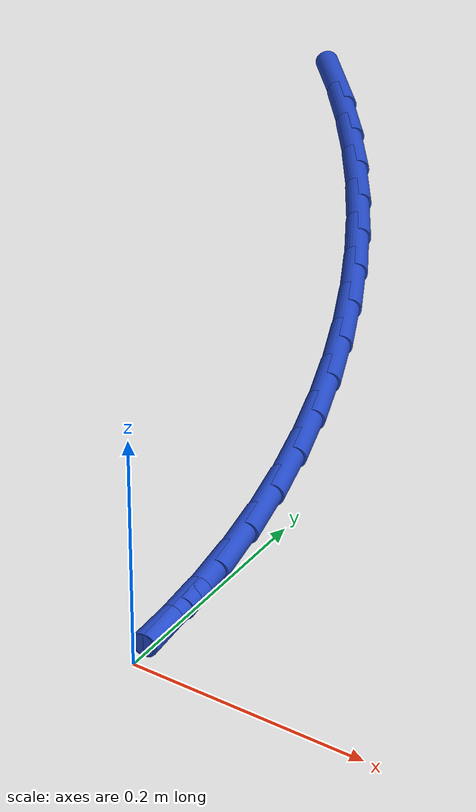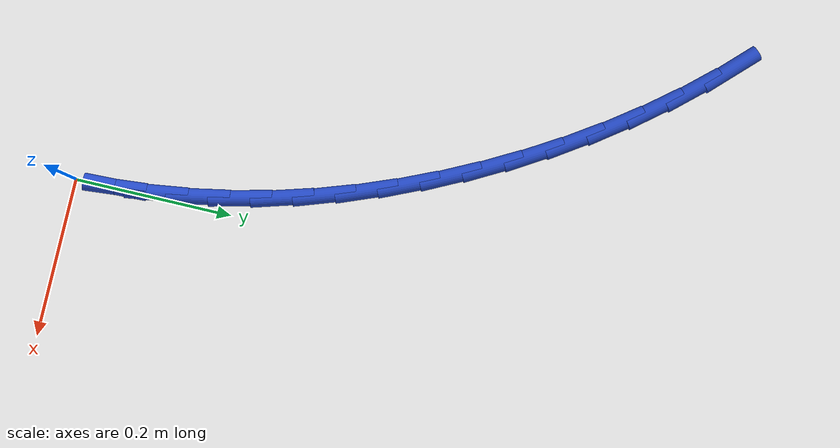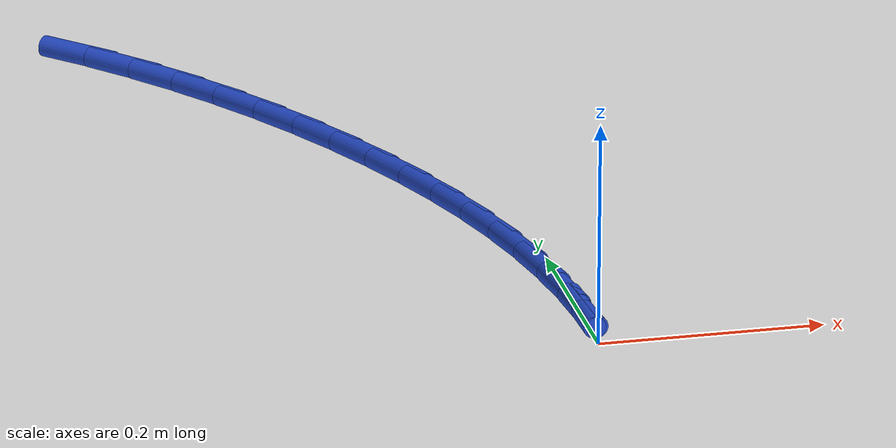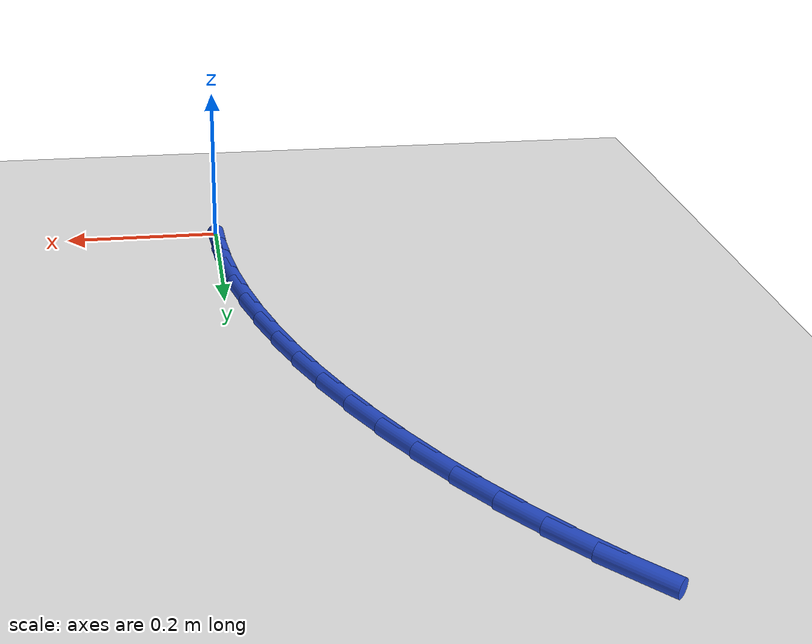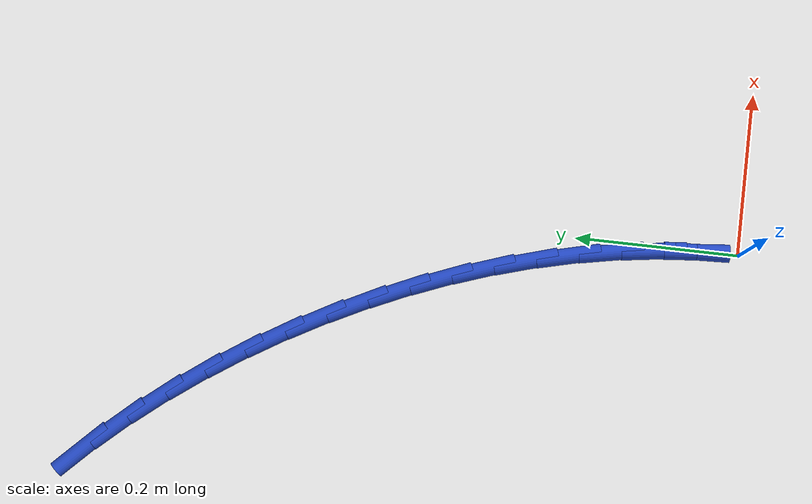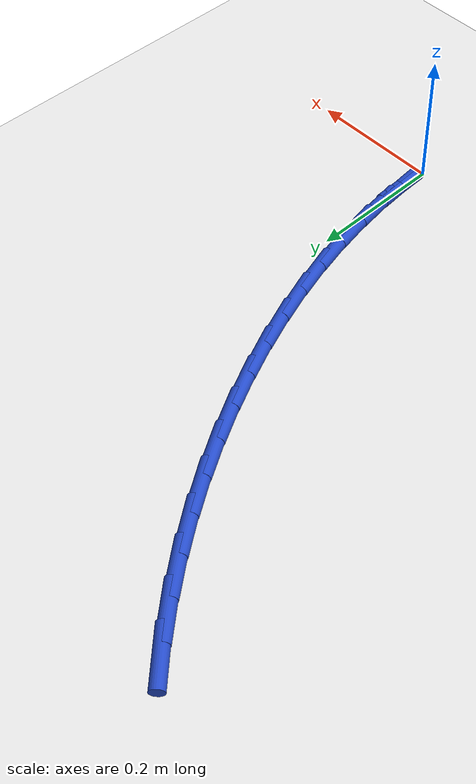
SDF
<sdf version="1.6">
 <world name="default">
  <model name="ground_plane">
   <static>1</static>
   <link name="link">
    <collision name="collision">
     <geometry><plane><normal>0 0 1</normal><size>100 100</size></plane></geometry>
     <surface><friction><ode><mu>100</mu><mu2>50</mu2></ode></friction></surface>
    </collision>
    <visual name="visual">
     <cast_shadows>0</cast_shadows>
     <geometry><plane><normal>0 0 1</normal><size>100 100</size></plane></geometry>
     <material>
      <script><uri>file://media/materials/scripts/gazebo.material</uri><name>Gazebo/WhiteGlow</name></script>
     </material>
    </visual>
   </link>
  </model>
  <model name="line">
   <link name="link_1">
    <pose>-0.0018304024086770192 0.0522657299767129 0.01 0 1.57 -1.4821750471648947</pose>
    <collision name="collision">
     <geometry><cylinder><radius>0.01</radius><length>0.08</length></cylinder></geometry>
    </collision>
    <visual name="visual">
     <material>
      <script><name>Gazebo/Blue</name><uri>file://media/materials/scripts/gazebo.material</uri></script>
     </material>
     <geometry><cylinder><radius>0.01</radius><length>0.08</length></cylinder></geometry>
    </visual>
   </link>
   <link name="link_2">
    <pose>-0.00644870450784032 0.1042420214756629 0.01 0 1.57 -1.4298195639345666</pose>
    <collision name="collision">
     <geometry><cylinder><radius>0.01</radius><length>0.08</length></cylinder></geometry>
    </collision>
    <visual name="visual">
     <material>
      <script><name>Gazebo/Blue</name><uri>file://media/materials/scripts/gazebo.material</uri></script>
     </material>
     <geometry><cylinder><radius>0.01</radius><length>0.08</length></cylinder></geometry>
    </visual>
   </link>
   <link name="link_3">
    <pose>-0.01377720636244817 0.1558809389996926 0.01 0 1.57 -1.378841891514578</pose>
    <collision name="collision">
     <geometry><cylinder><radius>0.01</radius><length>0.08</length></cylinder></geometry>
    </collision>
    <visual name="visual">
     <material>
      <script><name>Gazebo/Blue</name><uri>file://media/materials/scripts/gazebo.material</uri></script>
     </material>
     <geometry><cylinder><radius>0.01</radius><length>0.08</length></cylinder></geometry>
    </visual>
   </link>
   <link name="link_4">
    <pose>-0.02373820803745883 0.20713454705164483 0.01 0 1.57 -1.3293262983729572</pose>
    <collision name="collision">
     <geometry><cylinder><radius>0.01</radius><length>0.08</length></cylinder></geometry>
    </collision>
    <visual name="visual">
     <material>
      <script><name>Gazebo/Blue</name><uri>file://media/materials/scripts/gazebo.material</uri></script>
     </material>
     <geometry><cylinder><radius>0.01</radius><length>0.08</length></cylinder></geometry>
    </visual>
   </link>
   <link name="link_5">
    <pose>-0.03625400959783061 0.2579549101343623 0.01 0 1.57 -1.2813245611459034</pose>
    <collision name="collision">
     <geometry><cylinder><radius>0.01</radius><length>0.08</length></cylinder></geometry>
    </collision>
    <visual name="visual">
     <material>
      <script><name>Gazebo/Blue</name><uri>file://media/materials/scripts/gazebo.material</uri></script>
     </material>
     <geometry><cylinder><radius>0.01</radius><length>0.08</length></cylinder></geometry>
    </visual>
   </link>
   <link name="link_6">
    <pose>-0.05124691110852177 0.3082940927506878 0.01 0 1.57 -1.2348589623799768</pose>
    <collision name="collision">
     <geometry><cylinder><radius>0.01</radius><length>0.08</length></cylinder></geometry>
    </collision>
    <visual name="visual">
     <material>
      <script><name>Gazebo/Blue</name><uri>file://media/materials/scripts/gazebo.material</uri></script>
     </material>
     <geometry><cylinder><radius>0.01</radius><length>0.08</length></cylinder></geometry>
    </visual>
   </link>
   <link name="link_7">
    <pose>-0.06863921263449058 0.358104159403464 0.01 0 1.57 -1.1899258734850577</pose>
    <collision name="collision">
     <geometry><cylinder><radius>0.01</radius><length>0.08</length></cylinder></geometry>
    </collision>
    <visual name="visual">
     <material>
      <script><name>Gazebo/Blue</name><uri>file://media/materials/scripts/gazebo.material</uri></script>
     </material>
     <geometry><cylinder><radius>0.01</radius><length>0.08</length></cylinder></geometry>
    </visual>
   </link>
   <link name="link_8">
    <pose>-0.08835321424069537 0.40733717459553387 0.01 0 1.57 -1.146499585751582</pose>
    <collision name="collision">
     <geometry><cylinder><radius>0.01</radius><length>0.08</length></cylinder></geometry>
    </collision>
    <visual name="visual">
     <material>
      <script><name>Gazebo/Blue</name><uri>file://media/materials/scripts/gazebo.material</uri></script>
     </material>
     <geometry><cylinder><radius>0.01</radius><length>0.08</length></cylinder></geometry>
    </visual>
   </link>
   <link name="link_9">
    <pose>-0.11031121599209437 0.4559452028297401 0.01 0 1.57 -1.1043941932519024</pose>
    <collision name="collision">
     <geometry><cylinder><radius>0.01</radius><length>0.08</length></cylinder></geometry>
    </collision>
    <visual name="visual">
     <material>
      <script><name>Gazebo/Blue</name><uri>file://media/materials/scripts/gazebo.material</uri></script>
     </material>
     <geometry><cylinder><radius>0.01</radius><length>0.08</length></cylinder></geometry>
    </visual>
   </link>
   <link name="link_10">
    <pose>-0.13443687751845249 0.503866071900048 0.01 0 1.57 -1.0624769353199512</pose>
    <collision name="collision">
     <geometry><cylinder><radius>0.01</radius><length>0.08</length></cylinder></geometry>
    </collision>
    <visual name="visual">
     <material>
      <script><name>Gazebo/Blue</name><uri>file://media/materials/scripts/gazebo.material</uri></script>
     </material>
     <geometry><cylinder><radius>0.01</radius><length>0.08</length></cylinder></geometry>
    </visual>
   </link>
   <link name="link_11">
    <pose>-0.16066334686876596 0.5509382514369491 0.01 0 1.57 -1.0200133763209949</pose>
    <collision name="collision">
     <geometry><cylinder><radius>0.01</radius><length>0.08</length></cylinder></geometry>
    </collision>
    <visual name="visual">
     <material>
      <script><name>Gazebo/Blue</name><uri>file://media/materials/scripts/gazebo.material</uri></script>
     </material>
     <geometry><cylinder><radius>0.01</radius><length>0.08</length></cylinder></geometry>
    </visual>
   </link>
   <link name="link_12">
    <pose>-0.1889278153130915 0.5969578724042641 0.01 0 1.57 -0.9766688420253293</pose>
    <collision name="collision">
     <geometry><cylinder><radius>0.01</radius><length>0.08</length></cylinder></geometry>
    </collision>
    <visual name="visual">
     <material>
      <script><name>Gazebo/Blue</name><uri>file://media/materials/scripts/gazebo.material</uri></script>
     </material>
     <geometry><cylinder><radius>0.01</radius><length>0.08</length></cylinder></geometry>
    </visual>
   </link>
   <link name="link_13">
    <pose>-0.21916748911036033 0.641720908809525 0.01 0 1.57 -0.9321120138317024</pose>
    <collision name="collision">
     <geometry><cylinder><radius>0.01</radius><length>0.08</length></cylinder></geometry>
    </collision>
    <visual name="visual">
     <material>
      <script><name>Gazebo/Blue</name><uri>file://media/materials/scripts/gazebo.material</uri></script>
     </material>
     <geometry><cylinder><radius>0.01</radius><length>0.08</length></cylinder></geometry>
    </visual>
   </link>
   <link name="link_14">
    <pose>-0.251319574519504 0.6850233346602645 0.01 0 1.57 -0.8860109757836288</pose>
    <collision name="collision">
     <geometry><cylinder><radius>0.01</radius><length>0.08</length></cylinder></geometry>
    </collision>
    <visual name="visual">
     <material>
      <script><name>Gazebo/Blue</name><uri>file://media/materials/scripts/gazebo.material</uri></script>
     </material>
     <geometry><cylinder><radius>0.01</radius><length>0.08</length></cylinder></geometry>
    </visual>
   </link>
   <link name="link_15">
    <pose>-0.2853212777994536 0.7266611239640142 0.01 0 1.57 -0.8380324439520124</pose>
    <collision name="collision">
     <geometry><cylinder><radius>0.01</radius><length>0.08</length></cylinder></geometry>
    </collision>
    <visual name="visual">
     <material>
      <script><name>Gazebo/Blue</name><uri>file://media/materials/scripts/gazebo.material</uri></script>
     </material>
     <geometry><cylinder><radius>0.01</radius><length>0.08</length></cylinder></geometry>
    </visual>
   </link>
   <link name="link_16">
    <pose>-0.3211098052091407 0.7664302507283063 0.01 0 1.57 -0.7878430845814187</pose>
    <collision name="collision">
     <geometry><cylinder><radius>0.01</radius><length>0.08</length></cylinder></geometry>
    </collision>
    <visual name="visual">
     <material>
      <script><name>Gazebo/Blue</name><uri>file://media/materials/scripts/gazebo.material</uri></script>
     </material>
     <geometry><cylinder><radius>0.01</radius><length>0.08</length></cylinder></geometry>
    </visual>
   </link>
   <link name="link_131">
    <pose>-0.0018465632668438342 0.05223942832852602 0.01 0 1.57 -1.5354629623860216</pose>
    <collision name="collision">
     <geometry><cylinder><radius>0.01</radius><length>0.08</length></cylinder></geometry>
    </collision>
    <visual name="visual">
     <material>
      <script><name>Gazebo/Blue</name><uri>file://media/materials/scripts/gazebo.material</uri></script>
     </material>
     <geometry><cylinder><radius>0.01</radius><length>0.08</length></cylinder></geometry>
    </visual>
   </link>
  </model>
 </world>
</sdf>
